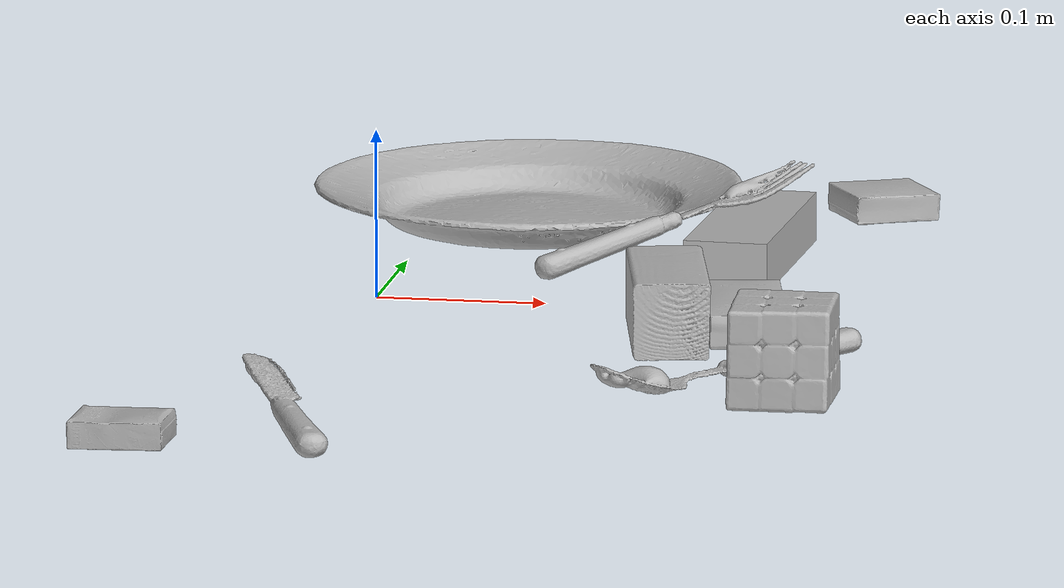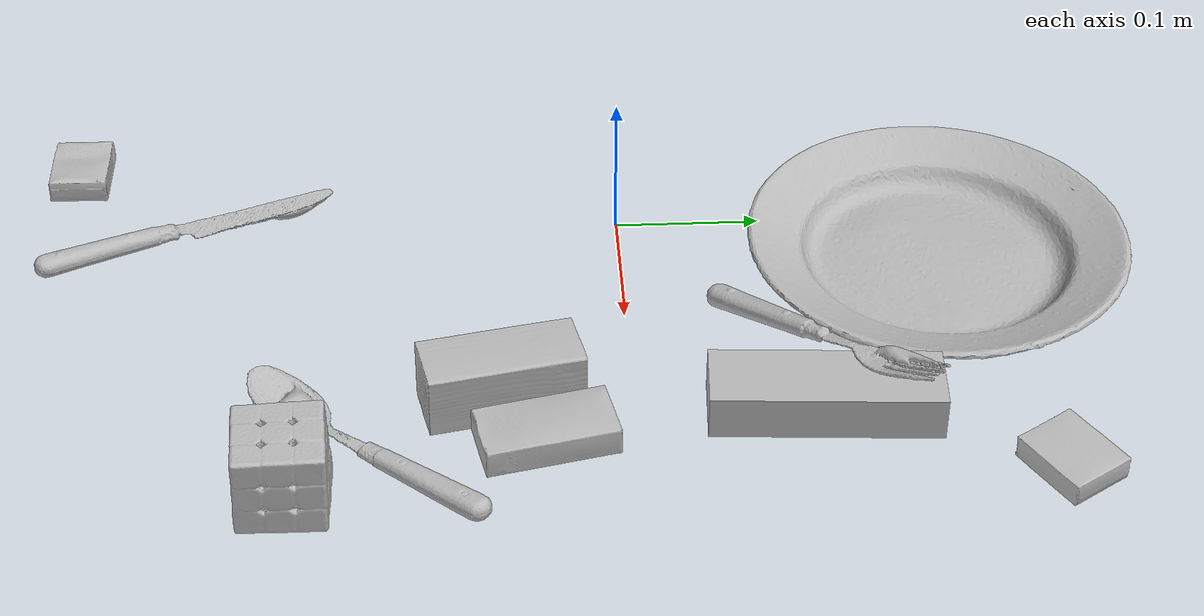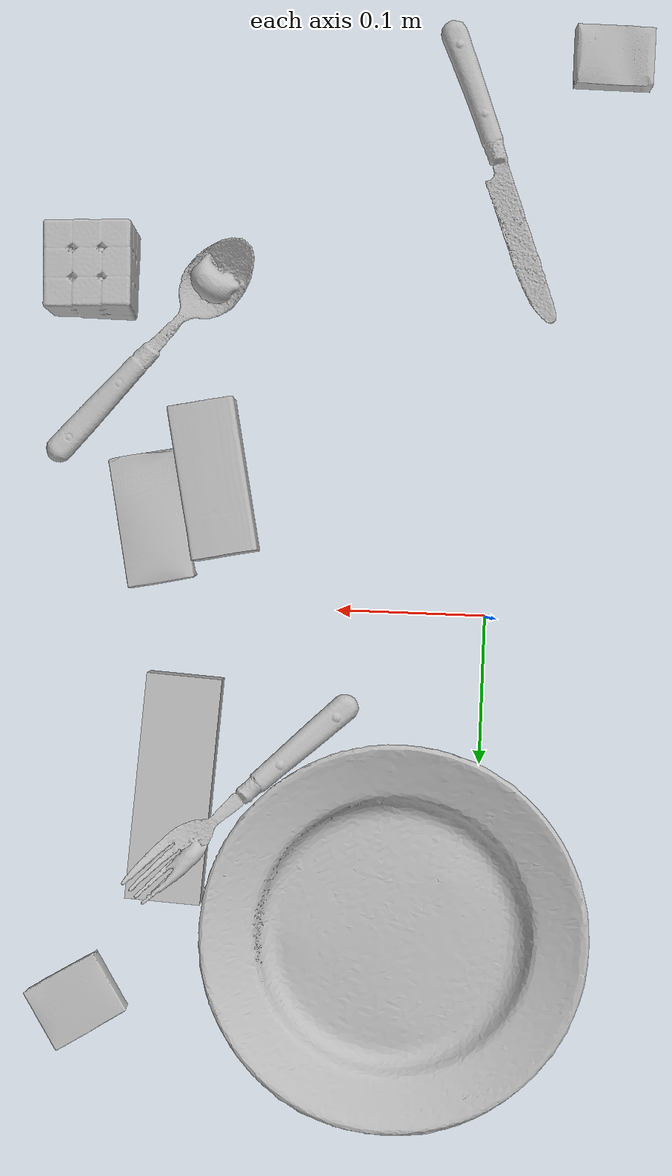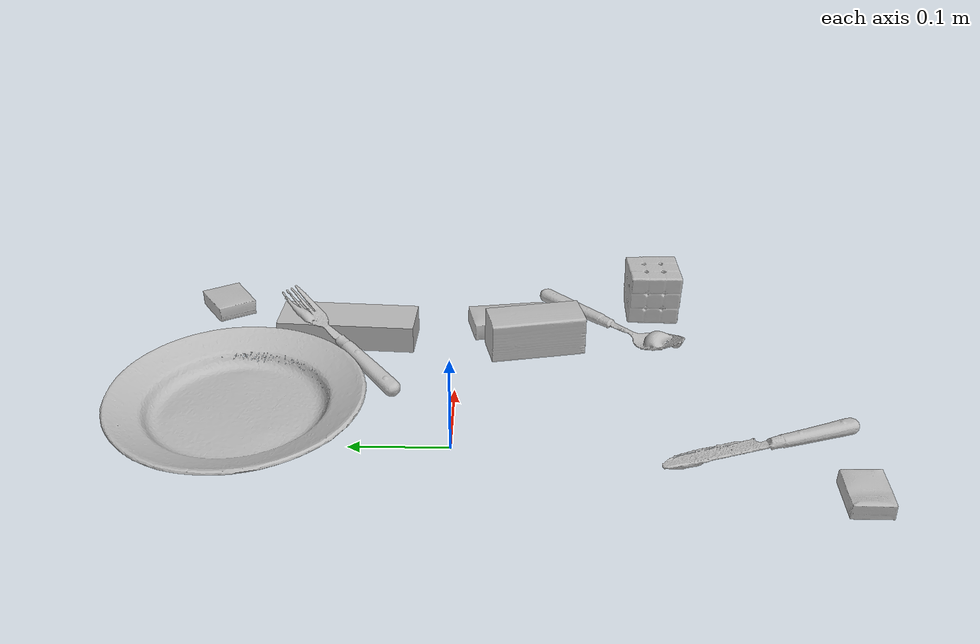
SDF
<sdf version="1.4">
  <world name="default">
    <light name="light1" type="point">
      <pose>0 0 1 0 0 0</pose>
      <diffuse>3 3 3 1</diffuse>
      <specular>3 3 3 1</specular>
    </light>
    <light name="light2" type="point">
      <pose>0 0.5 2 0 0 0</pose>
      <diffuse>1 1 1 1</diffuse>
      <specular>1 1 1 1</specular>
    </light>
    <light name="light3" type="point">
      <pose>0 0.5 2 0 0 0</pose>
      <diffuse>3 3 3 1</diffuse>
      <specular>3 3 3 1</specular>
    </light>
    <scene>
      <ambient>0.7 0.7 0.7</ambient>
    </scene>
    <model name="box11">
      <link name="link_box11">
        <collision name="default">
          <geometry>
            <mesh>
              <uri>model://rubiks_cube/collision_meshes/collision.obj</uri>
              <scale>1.0 1.0 1.0</scale>
            </mesh>
          </geometry>
          <surface>
            <friction>
              <ode>
                <mu>0.5</mu>
                <mu2>0.5</mu2>
              </ode>
            </friction>
          <contact>
        <ode>
            <max_vel>0</max_vel>
            <min_depth>0.0001</min_depth>
            <kp>1e8</kp>
        </ode>
    </contact></surface>
        </collision>
        <visual name="default">
          <geometry>
            <mesh>
              <uri>model://rubiks_cube/visual_meshes/visual.dae</uri>
              <scale>1.0 1.0 1.0</scale>
            </mesh>
          </geometry>
        </visual>
        <inertial>
          <mass>0.14537504315376282</mass>
          <pose>2.6721039830590598e-05 5.2569666877388954e-05 -7.264316082000732e-06 -0.05467316775404926 -0.09814130205097539 -0.03445549690793288</pose>
          <inertia>
            <ixx>8.032947e-05</ixx>
            <iyy>7.9954865e-05</iyy>
            <izz>8.099513e-05</izz>
            <ixy>0</ixy>
            <ixz>0</ixz>
            <iyz>0</iyz>
          </inertia>
        </inertial>
      </link>
      <pose>0.2705269157886505 -0.2201511114835739 0.02867894060909748 -4.132122315010128e-06 -1.8121706320525706e-06 0.028747906159575683</pose>
    </model>
    <model name="box12">
      <link name="link_box12">
        <collision name="default">
          <geometry>
            <mesh>
              <uri>model://cracker_box/collision_meshes/collision.obj</uri>
              <scale>0.25 0.25 0.25</scale>
            </mesh>
          </geometry>
          <surface>
            <friction>
              <ode>
                <mu>0.5</mu>
                <mu2>0.5</mu2>
              </ode>
            </friction>
          <contact>
        <ode>
            <max_vel>0</max_vel>
            <min_depth>0.0001</min_depth>
            <kp>1e8</kp>
        </ode>
    </contact></surface>
        </collision>
        <visual name="default">
          <geometry>
            <mesh>
              <uri>model://cracker_box/visual_meshes/visual.dae</uri>
              <scale>0.25 0.25 0.25</scale>
            </mesh>
          </geometry>
        </visual>
        <inertial>
          <mass>0.04629049822688103</mass>
          <pose>0.00023660360602661967 6.358561950037256e-05 -0.00042573834070935845 -0.00031620769195764 -0.01110649332573822 0.0025467952358288496</pose>
          <inertia>
            <ixx>7.358898e-06</ixx>
            <iyy>1.2150985e-05</iyy>
            <izz>1.7340568e-05</izz>
            <ixy>0</ixy>
            <ixz>0</ixz>
            <iyz>0</iyz>
          </inertia>
        </inertial>
      </link>
      <pose>-0.07243280857801437 -0.3786002993583679 0.009096026420593262 -0.014050536195956675 -0.005016614067728012 -0.010877462825030946</pose>
    </model>
    <model name="box13">
      <link name="link_box13">
        <collision name="default">
          <geometry>
            <mesh>
              <uri>model://sugar_box/collision_meshes/collision.obj</uri>
              <scale>0.5 0.5 0.5</scale>
            </mesh>
          </geometry>
          <surface>
            <friction>
              <ode>
                <mu>0.5</mu>
                <mu2>0.5</mu2>
              </ode>
            </friction>
          <contact>
        <ode>
            <max_vel>0</max_vel>
            <min_depth>0.0001</min_depth>
            <kp>1e8</kp>
        </ode>
    </contact></surface>
        </collision>
        <visual name="default">
          <geometry>
            <mesh>
              <uri>model://sugar_box/visual_meshes/visual.dae</uri>
              <scale>0.5 0.5 0.5</scale>
            </mesh>
          </geometry>
        </visual>
        <inertial>
          <mass>0.06844717264175415</mass>
          <pose>0.0005171863595023751 1.924554817378521e-05 -0.00018182402709499002 -0.0004046259509043031 0.0010506635218006705 0.0026153792547683827</pose>
          <inertia>
            <ixx>1.4257497e-05</ixx>
            <iyy>4.608316e-05</iyy>
            <izz>5.5167053e-05</izz>
            <ixy>0</ixy>
            <ixz>0</ixz>
            <iyz>0</iyz>
          </inertia>
        </inertial>
      </link>
      <pose>0.22590352594852448 -0.05757709965109825 0.01139930821955204 0.0007742845022200229 -0.023433386035641345 1.7589015871805453</pose>
    </model>
    <model name="box21">
      <link name="link_box21">
        <collision name="default">
          <geometry>
            <mesh>
              <uri>model://wood_block/collision_meshes/collision.obj</uri>
              <scale>0.5 0.5 0.5</scale>
            </mesh>
          </geometry>
          <surface>
            <friction>
              <ode>
                <mu>0.5</mu>
                <mu2>0.5</mu2>
              </ode>
            </friction>
          <contact>
        <ode>
            <max_vel>0</max_vel>
            <min_depth>0.0001</min_depth>
            <kp>1e8</kp>
        </ode>
    </contact></surface>
        </collision>
        <visual name="default">
          <geometry>
            <mesh>
              <uri>model://wood_block/visual_meshes/visual.dae</uri>
              <scale>0.5 0.5 0.5</scale>
            </mesh>
          </geometry>
        </visual>
        <inertial>
          <mass>0.22006426751613617</mass>
          <pose>-2.9066577553749084e-06 -0.00028540476341731846 0.00013204292918089777 -0.05220890442695651 -0.005192696130650637 -0.006861379915905358</pose>
          <inertia>
            <ixx>7.361981e-05</ixx>
            <iyy>0.00023256506</iyy>
            <izz>0.00023169514</izz>
            <ixy>0</ixy>
            <ixz>0</ixz>
            <iyz>0</iyz>
          </inertia>
        </inertial>
      </link>
      <pose>0.18502019345760345 -0.08460437506437302 0.022629253566265106 -0.005208431693275142 0.00571876542543885 -1.3720074690518507</pose>
    </model>
    <model name="box22">
      <link name="link_box22">
        <collision name="default">
          <geometry>
            <mesh>
              <uri>model://jenga/collision_meshes/collision.obj</uri>
              <scale>1.0 1.0 1.0</scale>
            </mesh>
          </geometry>
          <surface>
            <friction>
              <ode>
                <mu>0.5</mu>
                <mu2>0.5</mu2>
              </ode>
            </friction>
          <contact>
        <ode>
            <max_vel>0</max_vel>
            <min_depth>0.0001</min_depth>
            <kp>1e8</kp>
        </ode>
    </contact></surface>
        </collision>
        <visual name="default">
          <geometry>
            <mesh>
              <uri>model://jenga/visual_meshes/visual.dae</uri>
              <scale>1.0 1.0 1.0</scale>
            </mesh>
          </geometry>
        </visual>
        <inertial>
          <mass>0.1883949637413025</mass>
          <pose>-2.502855807051674e-07 -0.00010250010382151231 -4.0923405322246253e-05 0.0 -7.342154049184251e-07 0.0</pose>
          <inertia>
            <ixx>5.213346e-05</ixx>
            <iyy>0.0003532549</iyy>
            <izz>0.00037712968</izz>
            <ixy>0</ixy>
            <ixz>0</ixz>
            <iyz>0</iyz>
          </inertia>
        </inertial>
      </link>
      <pose>0.20374055206775665 0.12128430604934692 0.014999994076788425 7.356373252615884e-09 8.642111195894575e-09 -1.6323637828810131</pose>
    </model>
    <model name="box23">
      <link name="link_box23">
        <collision name="default">
          <geometry>
            <mesh>
              <uri>model://pudding_box/collision_meshes/collision.obj</uri>
              <scale>0.5 0.5 0.5</scale>
            </mesh>
          </geometry>
          <surface>
            <friction>
              <ode>
                <mu>0.5</mu>
                <mu2>0.5</mu2>
              </ode>
            </friction>
          <contact>
        <ode>
            <max_vel>0</max_vel>
            <min_depth>0.0001</min_depth>
            <kp>1e8</kp>
        </ode>
    </contact></surface>
        </collision>
        <visual name="default">
          <geometry>
            <mesh>
              <uri>model://pudding_box/visual_meshes/visual.dae</uri>
              <scale>0.5 0.5 0.5</scale>
            </mesh>
          </geometry>
        </visual>
        <inertial>
          <mass>0.030779412016272545</mass>
          <pose>0.00024474109522998333 0.0004033942532259971 -0.0002594413817860186 0.0052131022413302 -0.00660379919873188 0.020079828882866795</pose>
          <inertia>
            <ixx>8.6986365e-06</ixx>
            <iyy>5.8525034e-06</iyy>
            <izz>1.2845808e-05</izz>
            <ixy>0</ixy>
            <ixz>0</ixz>
            <iyz>0</iyz>
          </inertia>
        </inertial>
      </link>
      <pose>0.26528415083885193 0.2673575282096863 0.009862905368208885 0.02234962857464669 -0.011391239920124575 2.12862110192681</pose>
    </model>
    <model name="plate1">
      <link name="link_plate1">
        <collision name="default">
          <geometry>
            <mesh>
              <uri>model://plate/collision_meshes/collision.obj</uri>
              <scale>1.0 1.0 1.0</scale>
            </mesh>
          </geometry>
          <surface>
            <friction>
              <ode>
                <mu>0.5</mu>
                <mu2>0.5</mu2>
              </ode>
            </friction>
          <contact>
        <ode>
            <max_vel>0</max_vel>
            <min_depth>0.0001</min_depth>
            <kp>1e8</kp>
        </ode>
    </contact></surface>
        </collision>
        <visual name="default">
          <geometry>
            <mesh>
              <uri>model://plate/visual_meshes/visual.dae</uri>
              <scale>1.0 1.0 1.0</scale>
            </mesh>
          </geometry>
        </visual>
        <inertial>
          <mass>0.2551877498626709</mass>
          <pose>-0.0006044633337296546 0.0002782584633678198 -0.0010561984963715076 0.002218758596895186 -0.003225500510611216 0.45261892370472845</pose>
          <inertia>
            <ixx>0.0011937734</ixx>
            <iyy>0.0011823553</iyy>
            <izz>0.002334842</izz>
            <ixy>0</ixy>
            <ixz>0</ixz>
            <iyz>0</iyz>
          </inertia>
        </inertial>
      </link>
      <pose>0.05400878190994263 0.2173040807247162 0.013733004219830036 -2.666294720682437e-09 8.509872502082323e-09 -2.099574209043407</pose>
    </model>
    <model name="silverware1">
      <link name="link_silverware1">
        <collision name="default">
          <geometry>
            <mesh>
              <uri>model://knife/collision_meshes/collision.obj</uri>
              <scale>1.0 1.0 1.0</scale>
            </mesh>
          </geometry>
          <surface>
            <friction>
              <ode>
                <mu>0.5</mu>
                <mu2>0.5</mu2>
              </ode>
            </friction>
          <contact>
        <ode>
            <max_vel>0</max_vel>
            <min_depth>0.0001</min_depth>
            <kp>1e8</kp>
        </ode>
    </contact></surface>
        </collision>
        <visual name="default">
          <geometry>
            <mesh>
              <uri>model://knife/visual_meshes/visual.dae</uri>
              <scale>1.0 1.0 1.0</scale>
            </mesh>
          </geometry>
        </visual>
        <inertial>
          <mass>0.030903667211532593</mass>
          <pose>-0.023785250261425972 0.0015275125624611974 5.062023410573602e-05 0.07305665398911224 0.017248417197799442 -0.0074098217442817044</pose>
          <inertia>
            <ixx>8.7717143e-07</ixx>
            <iyy>0.00011872688</iyy>
            <izz>0.000119009375</izz>
            <ixy>0</ixy>
            <ixz>0</ixz>
            <iyz>0</iyz>
          </inertia>
        </inertial>
      </link>
      <pose>0.0024558077566325665 -0.2983170449733734 0.007946520112454891 -0.023913553016891687 -0.014542561056000726 1.9208108886423088</pose>
    </model>
    <model name="silverware2">
      <link name="link_silverware2">
        <collision name="default">
          <geometry>
            <mesh>
              <uri>model://spoon/collision_meshes/collision.obj</uri>
              <scale>1.0 1.0 1.0</scale>
            </mesh>
          </geometry>
          <surface>
            <friction>
              <ode>
                <mu>0.5</mu>
                <mu2>0.5</mu2>
              </ode>
            </friction>
          <contact>
        <ode>
            <max_vel>0</max_vel>
            <min_depth>0.0001</min_depth>
            <kp>1e8</kp>
        </ode>
    </contact></surface>
        </collision>
        <visual name="default">
          <geometry>
            <mesh>
              <uri>model://spoon/visual_meshes/visual.dae</uri>
              <scale>1.0 1.0 1.0</scale>
            </mesh>
          </geometry>
        </visual>
        <inertial>
          <mass>0.020994963124394417</mass>
          <pose>-0.005526323337107897 -0.00160341733135283 -0.0007271658978424966 0.035216710718480135 -0.03906584501417282 0.00615060951780049</pose>
          <inertia>
            <ixx>1.1677738e-06</ixx>
            <iyy>7.988513e-05</iyy>
            <izz>8.046103e-05</izz>
            <ixy>0</ixy>
            <ixz>0</ixz>
            <iyz>0</iyz>
          </inertia>
        </inertial>
      </link>
      <pose>0.23316921293735504 -0.1716039925813675 0.008385260589420795 0.0067297275004825265 0.026892977766922985 -2.281263639778315</pose>
    </model>
    <model name="silverware3">
      <link name="link_silverware3">
        <collision name="default">
          <geometry>
            <mesh>
              <uri>model://fork/collision_meshes/collision.obj</uri>
              <scale>1.0 1.0 1.0</scale>
            </mesh>
          </geometry>
          <surface>
            <friction>
              <ode>
                <mu>0.5</mu>
                <mu2>0.5</mu2>
              </ode>
            </friction>
          <contact>
        <ode>
            <max_vel>0</max_vel>
            <min_depth>0.0001</min_depth>
            <kp>1e8</kp>
        </ode>
    </contact></surface>
        </collision>
        <visual name="default">
          <geometry>
            <mesh>
              <uri>model://fork/visual_meshes/visual.dae</uri>
              <scale>1.0 1.0 1.0</scale>
            </mesh>
          </geometry>
        </visual>
        <inertial>
          <mass>0.012144052423536777</mass>
          <pose>-0.029570043087005615 0.0004658822144847363 0.0003218860656488687 -0.013551171335247731 -0.01097783699854739 0.014453902564514984</pose>
          <inertia>
            <ixx>4.257177e-07</ixx>
            <iyy>3.170462e-05</iyy>
            <izz>3.1895037e-05</izz>
            <ixy>0</ixy>
            <ixz>0</ixz>
            <iyz>0</iyz>
          </inertia>
        </inertial>
      </link>
      <pose>0.15715517103672028 0.12384206056594849 0.024753781035542488 0.00617167395646318 -0.18505878304078355 0.7380020654593479</pose>
    </model>
  <physics type="ode">
      <max_contacts>50</max_contacts>
      <ode>
        <solver>
          <type>quick</type>
          <iters>75</iters>
        </solver>
        <constraints>
          <contact_max_correcting_vel>0</contact_max_correcting_vel>
          <contact_surface_layer>0</contact_surface_layer>
        </constraints>
      </ode>
    </physics></world>
</sdf>
